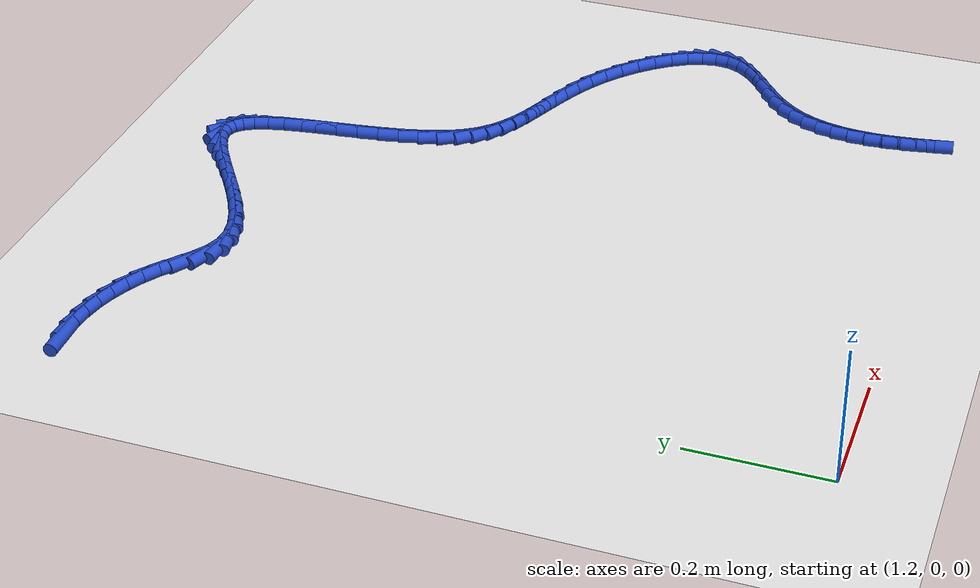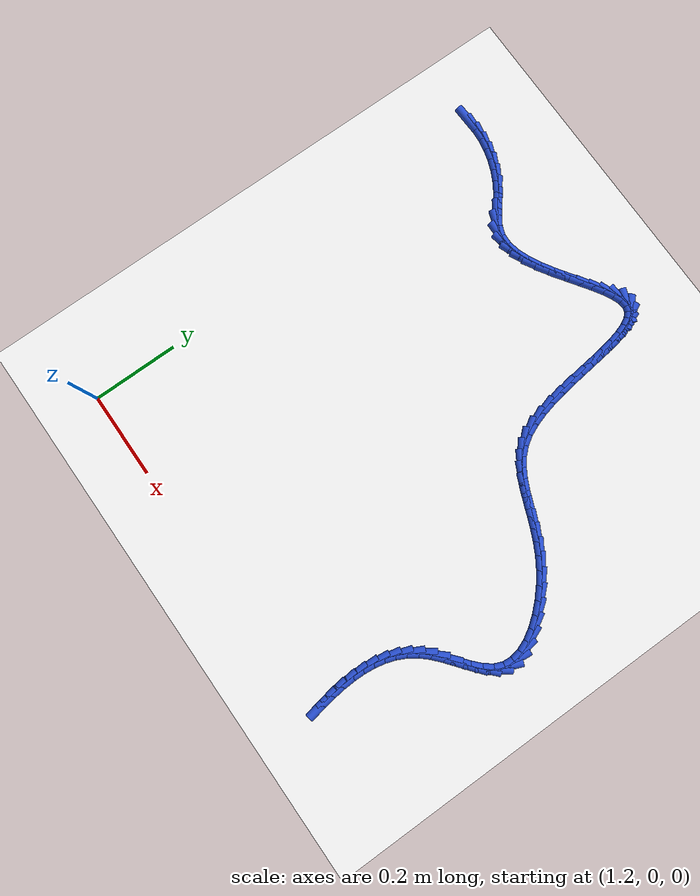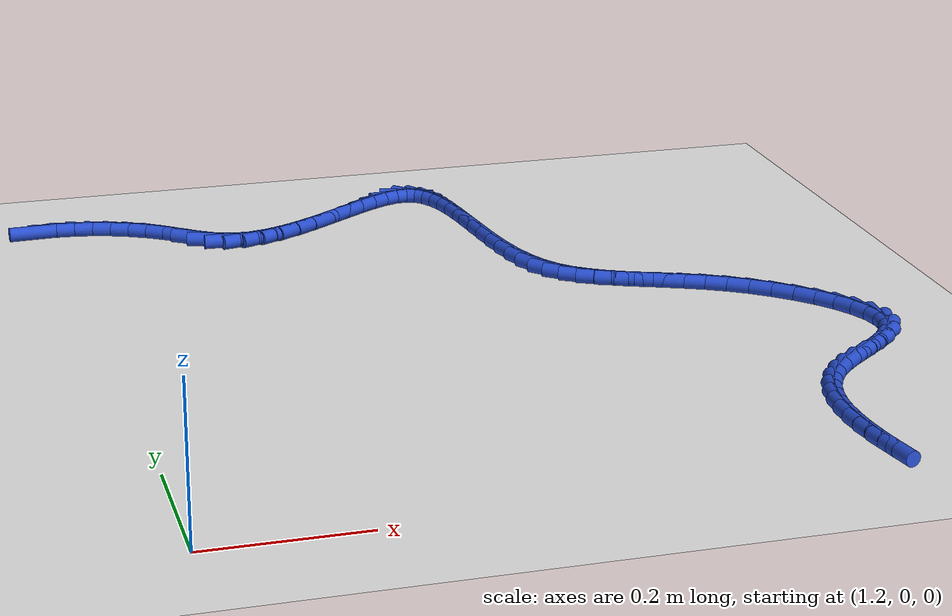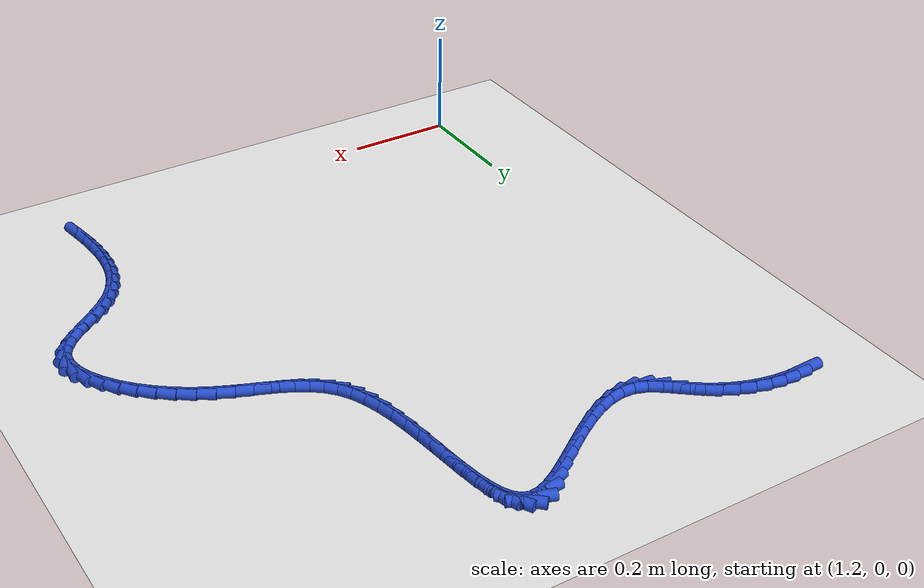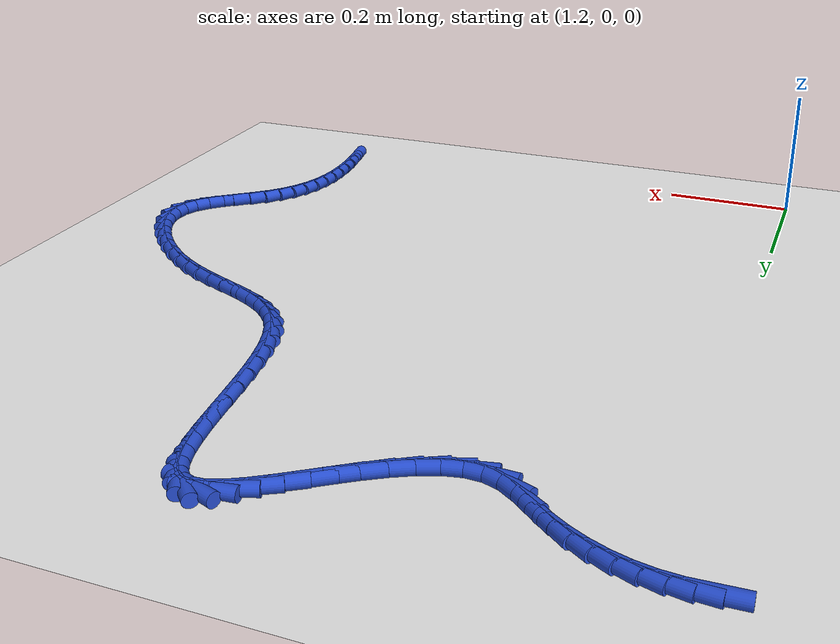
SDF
<sdf version="1.6">
 <world name="default">
  <model name="ground_plane">
   <static>1</static>
   <link name="link">
    <collision name="collision">
     <geometry><plane><normal>0 0 1</normal><size>100 100</size></plane></geometry>
     <surface><friction><ode><mu>100</mu><mu2>50</mu2></ode></friction></surface>
    </collision>
    <visual name="visual">
     <cast_shadows>0</cast_shadows>
     <geometry><plane><normal>0 0 1</normal><size>100 100</size></plane></geometry>
     <material>
      <script><uri>file://media/materials/scripts/gazebo.material</uri><name>Gazebo/WhiteGlow</name></script>
     </material>
    </visual>
   </link>
  </model>
  <model name="line">
   <link name="link_75">
    <pose>1.1526266735018658 1.0463145162870864 0.01 0 1.57 0.03861361944740141</pose>
    <collision name="collision">
     <geometry><cylinder><radius>0.01</radius><length>0.08</length></cylinder></geometry>
    </collision>
    <visual name="visual">
     <material>
      <script><name>Gazebo/Blue</name><uri>file://media/materials/scripts/gazebo.material</uri></script>
     </material>
     <geometry><cylinder><radius>0.01</radius><length>0.08</length></cylinder></geometry>
    </visual>
   </link>
   <link name="link_76">
    <pose>1.1792837865682195 1.047344355791699 0.01 0 1.57 -0.07263705225409967</pose>
    <collision name="collision">
     <geometry><cylinder><radius>0.01</radius><length>0.08</length></cylinder></geometry>
    </collision>
    <visual name="visual">
     <material>
      <script><name>Gazebo/Blue</name><uri>file://media/materials/scripts/gazebo.material</uri></script>
     </material>
     <geometry><cylinder><radius>0.01</radius><length>0.08</length></cylinder></geometry>
    </visual>
   </link>
   <link name="link_77">
    <pose>1.2057616995558191 1.0454176885938118 0.01 0 1.57 -0.17971318732019995</pose>
    <collision name="collision">
     <geometry><cylinder><radius>0.01</radius><length>0.08</length></cylinder></geometry>
    </collision>
    <visual name="visual">
     <material>
      <script><name>Gazebo/Blue</name><uri>file://media/materials/scripts/gazebo.material</uri></script>
     </material>
     <geometry><cylinder><radius>0.01</radius><length>0.08</length></cylinder></geometry>
    </visual>
   </link>
   <link name="link_78">
    <pose>1.2318934217846826 1.0406702540904618 0.01 0 1.57 -0.2823685182452931</pose>
    <collision name="collision">
     <geometry><cylinder><radius>0.01</radius><length>0.08</length></cylinder></geometry>
    </collision>
    <visual name="visual">
     <material>
      <script><name>Gazebo/Blue</name><uri>file://media/materials/scripts/gazebo.material</uri></script>
     </material>
     <geometry><cylinder><radius>0.01</radius><length>0.08</length></cylinder></geometry>
    </visual>
   </link>
   <link name="link_79">
    <pose>1.2575119625748288 1.0332377916786875 0.01 0 1.57 -0.3807277119849179</pose>
    <collision name="collision">
     <geometry><cylinder><radius>0.01</radius><length>0.08</length></cylinder></geometry>
    </collision>
    <visual name="visual">
     <material>
      <script><name>Gazebo/Blue</name><uri>file://media/materials/scripts/gazebo.material</uri></script>
     </material>
     <geometry><cylinder><radius>0.01</radius><length>0.08</length></cylinder></geometry>
    </visual>
   </link>
   <link name="link_80">
    <pose>1.2824503312462747 1.0232560407555256 0.01 0 1.57 -0.4751925008197552</pose>
    <collision name="collision">
     <geometry><cylinder><radius>0.01</radius><length>0.08</length></cylinder></geometry>
    </collision>
    <visual name="visual">
     <material>
      <script><name>Gazebo/Blue</name><uri>file://media/materials/scripts/gazebo.material</uri></script>
     </material>
     <geometry><cylinder><radius>0.01</radius><length>0.08</length></cylinder></geometry>
    </visual>
   </link>
   <link name="link_81">
    <pose>1.3065415371190388 1.010860740718014 0.01 0 1.57 -0.5663501517348631</pose>
    <collision name="collision">
     <geometry><cylinder><radius>0.01</radius><length>0.08</length></cylinder></geometry>
    </collision>
    <visual name="visual">
     <material>
      <script><name>Gazebo/Blue</name><uri>file://media/materials/scripts/gazebo.material</uri></script>
     </material>
     <geometry><cylinder><radius>0.01</radius><length>0.08</length></cylinder></geometry>
    </visual>
   </link>
   <link name="link_82">
    <pose>1.3296185895131394 0.9961876309631899 0.01 0 1.57 -0.6507239738071691</pose>
    <collision name="collision">
     <geometry><cylinder><radius>0.01</radius><length>0.08</length></cylinder></geometry>
    </collision>
    <visual name="visual">
     <material>
      <script><name>Gazebo/Blue</name><uri>file://media/materials/scripts/gazebo.material</uri></script>
     </material>
     <geometry><cylinder><radius>0.01</radius><length>0.08</length></cylinder></geometry>
    </visual>
   </link>
   <link name="link_83">
    <pose>1.351557193713651 0.9794847318175028 0.01 0 1.57 -0.6697816495396938</pose>
    <collision name="collision">
     <geometry><cylinder><radius>0.01</radius><length>0.08</length></cylinder></geometry>
    </collision>
    <visual name="visual">
     <material>
      <script><name>Gazebo/Blue</name><uri>file://media/materials/scripts/gazebo.material</uri></script>
     </material>
     <geometry><cylinder><radius>0.01</radius><length>0.08</length></cylinder></geometry>
    </visual>
   </link>
   <link name="link_84">
    <pose>1.3728501435175093 0.9626228696863709 0.01 0 1.57 -0.5726782461041459</pose>
    <collision name="collision">
     <geometry><cylinder><radius>0.01</radius><length>0.08</length></cylinder></geometry>
    </collision>
    <visual name="visual">
     <material>
      <script><name>Gazebo/Blue</name><uri>file://media/materials/scripts/gazebo.material</uri></script>
     </material>
     <geometry><cylinder><radius>0.01</radius><length>0.08</length></cylinder></geometry>
    </visual>
   </link>
   <link name="link_85">
    <pose>1.3944543751584002 0.9486934627596779 0.01 0 1.57 -0.33447496092929024</pose>
    <collision name="collision">
     <geometry><cylinder><radius>0.01</radius><length>0.08</length></cylinder></geometry>
    </collision>
    <visual name="visual">
     <material>
      <script><name>Gazebo/Blue</name><uri>file://media/materials/scripts/gazebo.material</uri></script>
     </material>
     <geometry><cylinder><radius>0.01</radius><length>0.08</length></cylinder></geometry>
    </visual>
   </link>
   <link name="link_86">
    <pose>1.4173161890875434 0.9407482381595356 0.01 0 1.57 -0.03491881624072259</pose>
    <collision name="collision">
     <geometry><cylinder><radius>0.01</radius><length>0.08</length></cylinder></geometry>
    </collision>
    <visual name="visual">
     <material>
      <script><name>Gazebo/Blue</name><uri>file://media/materials/scripts/gazebo.material</uri></script>
     </material>
     <geometry><cylinder><radius>0.01</radius><length>0.08</length></cylinder></geometry>
    </visual>
   </link>
   <link name="link_87">
    <pose>1.4417671094479425 0.9398940937768268 0.01 0 1.57 0.19913435011032157</pose>
    <collision name="collision">
     <geometry><cylinder><radius>0.01</radius><length>0.08</length></cylinder></geometry>
    </collision>
    <visual name="visual">
     <material>
      <script><name>Gazebo/Blue</name><uri>file://media/materials/scripts/gazebo.material</uri></script>
     </material>
     <geometry><cylinder><radius>0.01</radius><length>0.08</length></cylinder></geometry>
    </visual>
   </link>
   <link name="link_88">
    <pose>1.4674559978607722 0.9450783419592488 0.01 0 1.57 0.36222895783578396</pose>
    <collision name="collision">
     <geometry><cylinder><radius>0.01</radius><length>0.08</length></cylinder></geometry>
    </collision>
    <visual name="visual">
     <material>
      <script><name>Gazebo/Blue</name><uri>file://media/materials/scripts/gazebo.material</uri></script>
     </material>
     <geometry><cylinder><radius>0.01</radius><length>0.08</length></cylinder></geometry>
    </visual>
   </link>
   <link name="link_89">
    <pose>1.4939961294652695 0.9551357181230407 0.01 0 1.57 0.47140595957797343</pose>
    <collision name="collision">
     <geometry><cylinder><radius>0.01</radius><length>0.08</length></cylinder></geometry>
    </collision>
    <visual name="visual">
     <material>
      <script><name>Gazebo/Blue</name><uri>file://media/materials/scripts/gazebo.material</uri></script>
     </material>
     <geometry><cylinder><radius>0.01</radius><length>0.08</length></cylinder></geometry>
    </visual>
   </link>
   <link name="link_90">
    <pose>1.5210007794006692 0.968900957684441 0.01 0 1.57 0.542002814652058</pose>
    <collision name="collision">
     <geometry><cylinder><radius>0.01</radius><length>0.08</length></cylinder></geometry>
    </collision>
    <visual name="visual">
     <material>
      <script><name>Gazebo/Blue</name><uri>file://media/materials/scripts/gazebo.material</uri></script>
     </material>
     <geometry><cylinder><radius>0.01</radius><length>0.08</length></cylinder></geometry>
    </visual>
   </link>
   <link name="link_91">
    <pose>1.5480832228062076 0.9852087960596891 0.01 0 1.57 0.5837541852503759</pose>
    <collision name="collision">
     <geometry><cylinder><radius>0.01</radius><length>0.08</length></cylinder></geometry>
    </collision>
    <visual name="visual">
     <material>
      <script><name>Gazebo/Blue</name><uri>file://media/materials/scripts/gazebo.material</uri></script>
     </material>
     <geometry><cylinder><radius>0.01</radius><length>0.08</length></cylinder></geometry>
    </visual>
   </link>
   <link name="link_92">
    <pose>1.5748567348211209 1.002893968665024 0.01 0 1.57 0.6014722919995131</pose>
    <collision name="collision">
     <geometry><cylinder><radius>0.01</radius><length>0.08</length></cylinder></geometry>
    </collision>
    <visual name="visual">
     <material>
      <script><name>Gazebo/Blue</name><uri>file://media/materials/scripts/gazebo.material</uri></script>
     </material>
     <geometry><cylinder><radius>0.01</radius><length>0.08</length></cylinder></geometry>
    </visual>
   </link>
   <link name="link_93">
    <pose>1.6009345905846453 1.020791210916685 0.01 0 1.57 0.5957287079945708</pose>
    <collision name="collision">
     <geometry><cylinder><radius>0.01</radius><length>0.08</length></cylinder></geometry>
    </collision>
    <visual name="visual">
     <material>
      <script><name>Gazebo/Blue</name><uri>file://media/materials/scripts/gazebo.material</uri></script>
     </material>
     <geometry><cylinder><radius>0.01</radius><length>0.08</length></cylinder></geometry>
    </visual>
   </link>
   <link name="link_94">
    <pose>1.625930065236017 1.0377352582309116 0.01 0 1.57 0.5623077037502237</pose>
    <collision name="collision">
     <geometry><cylinder><radius>0.01</radius><length>0.08</length></cylinder></geometry>
    </collision>
    <visual name="visual">
     <material>
      <script><name>Gazebo/Blue</name><uri>file://media/materials/scripts/gazebo.material</uri></script>
     </material>
     <geometry><cylinder><radius>0.01</radius><length>0.08</length></cylinder></geometry>
    </visual>
   </link>
   <link name="link_95">
    <pose>1.6494564339144717 1.052560846023942 0.01 0 1.57 0.4893910795156581</pose>
    <collision name="collision">
     <geometry><cylinder><radius>0.01</radius><length>0.08</length></cylinder></geometry>
    </collision>
    <visual name="visual">
     <material>
      <script><name>Gazebo/Blue</name><uri>file://media/materials/scripts/gazebo.material</uri></script>
     </material>
     <geometry><cylinder><radius>0.01</radius><length>0.08</length></cylinder></geometry>
    </visual>
   </link>
   <link name="link_96">
    <pose>1.6711269717592454 1.064102709712016 0.01 0 1.57 0.35005032080756443</pose>
    <collision name="collision">
     <geometry><cylinder><radius>0.01</radius><length>0.08</length></cylinder></geometry>
    </collision>
    <visual name="visual">
     <material>
      <script><name>Gazebo/Blue</name><uri>file://media/materials/scripts/gazebo.material</uri></script>
     </material>
     <geometry><cylinder><radius>0.01</radius><length>0.08</length></cylinder></geometry>
    </visual>
   </link>
   <link name="link_97">
    <pose>1.690554953909575 1.0711955847113728 0.01 0 1.57 0.08779373933963806</pose>
    <collision name="collision">
     <geometry><cylinder><radius>0.01</radius><length>0.08</length></cylinder></geometry>
    </collision>
    <visual name="visual">
     <material>
      <script><name>Gazebo/Blue</name><uri>file://media/materials/scripts/gazebo.material</uri></script>
     </material>
     <geometry><cylinder><radius>0.01</radius><length>0.08</length></cylinder></geometry>
    </visual>
   </link>
   <link name="link_98">
    <pose>1.7073536555046944 1.0726742064382502 0.01 0 1.57 -0.347801669999959</pose>
    <collision name="collision">
     <geometry><cylinder><radius>0.01</radius><length>0.08</length></cylinder></geometry>
    </collision>
    <visual name="visual">
     <material>
      <script><name>Gazebo/Blue</name><uri>file://media/materials/scripts/gazebo.material</uri></script>
     </material>
     <geometry><cylinder><radius>0.01</radius><length>0.08</length></cylinder></geometry>
    </visual>
   </link>
   <link name="link_99">
    <pose>1.72124570049186 1.0676377950053537 0.01 0 1.57 -0.7826201270475508</pose>
    <collision name="collision">
     <geometry><cylinder><radius>0.01</radius><length>0.08</length></cylinder></geometry>
    </collision>
    <visual name="visual">
     <material>
      <script><name>Gazebo/Blue</name><uri>file://media/materials/scripts/gazebo.material</uri></script>
     </material>
     <geometry><cylinder><radius>0.01</radius><length>0.08</length></cylinder></geometry>
    </visual>
   </link>
   <link name="link_100">
    <pose>1.7324821173272873 1.0564636357251551 0.01 0 1.57 -1.073107047162691</pose>
    <collision name="collision">
     <geometry><cylinder><radius>0.01</radius><length>0.08</length></cylinder></geometry>
    </collision>
    <visual name="visual">
     <material>
      <script><name>Gazebo/Blue</name><uri>file://media/materials/scripts/gazebo.material</uri></script>
     </material>
     <geometry><cylinder><radius>0.01</radius><length>0.08</length></cylinder></geometry>
    </visual>
   </link>
   <link name="link_101">
    <pose>1.7414733320482754 1.0399145528255798 0.01 0 1.57 -1.2446812266334843</pose>
    <collision name="collision">
     <geometry><cylinder><radius>0.01</radius><length>0.08</length></cylinder></geometry>
    </collision>
    <visual name="visual">
     <material>
      <script><name>Gazebo/Blue</name><uri>file://media/materials/scripts/gazebo.material</uri></script>
     </material>
     <geometry><cylinder><radius>0.01</radius><length>0.08</length></cylinder></geometry>
    </visual>
   </link>
   <link name="link_102">
    <pose>1.7486298037009003 1.0187534503737106 0.01 0 1.57 -1.345493740062619</pose>
    <collision name="collision">
     <geometry><cylinder><radius>0.01</radius><length>0.08</length></cylinder></geometry>
    </collision>
    <visual name="visual">
     <material>
      <script><name>Gazebo/Blue</name><uri>file://media/materials/scripts/gazebo.material</uri></script>
     </material>
     <geometry><cylinder><radius>0.01</radius><length>0.08</length></cylinder></geometry>
    </visual>
   </link>
   <link name="link_103">
    <pose>1.7543619913312383 0.9937432324366319 0.01 0 1.57 -1.4044142377420004</pose>
    <collision name="collision">
     <geometry><cylinder><radius>0.01</radius><length>0.08</length></cylinder></geometry>
    </collision>
    <visual name="visual">
     <material>
      <script><name>Gazebo/Blue</name><uri>file://media/materials/scripts/gazebo.material</uri></script>
     </material>
     <geometry><cylinder><radius>0.01</radius><length>0.08</length></cylinder></geometry>
    </visual>
   </link>
   <link name="link_104">
    <pose>1.7590803539853666 0.9656468030814277 0.01 0 1.57 -1.436338601322821</pose>
    <collision name="collision">
     <geometry><cylinder><radius>0.01</radius><length>0.08</length></cylinder></geometry>
    </collision>
    <visual name="visual">
     <material>
      <script><name>Gazebo/Blue</name><uri>file://media/materials/scripts/gazebo.material</uri></script>
     </material>
     <geometry><cylinder><radius>0.01</radius><length>0.08</length></cylinder></geometry>
    </visual>
   </link>
   <link name="link_105">
    <pose>1.7631953507093614 0.9352270663751818 0.01 0 1.57 -1.4487642947102197</pose>
    <collision name="collision">
     <geometry><cylinder><radius>0.01</radius><length>0.08</length></cylinder></geometry>
    </collision>
    <visual name="visual">
     <material>
      <script><name>Gazebo/Blue</name><uri>file://media/materials/scripts/gazebo.material</uri></script>
     </material>
     <geometry><cylinder><radius>0.01</radius><length>0.08</length></cylinder></geometry>
    </visual>
   </link>
   <link name="link_106">
    <pose>1.7671174405493002 0.9032469263849795 0.01 0 1.57 -1.4451667577564475</pose>
    <collision name="collision">
     <geometry><cylinder><radius>0.01</radius><length>0.08</length></cylinder></geometry>
    </collision>
    <visual name="visual">
     <material>
      <script><name>Gazebo/Blue</name><uri>file://media/materials/scripts/gazebo.material</uri></script>
     </material>
     <geometry><cylinder><radius>0.01</radius><length>0.08</length></cylinder></geometry>
    </visual>
   </link>
   <link name="link_107">
    <pose>1.7712570825512586 0.8704692871779036 0.01 0 1.57 -1.4265050339522864</pose>
    <collision name="collision">
     <geometry><cylinder><radius>0.01</radius><length>0.08</length></cylinder></geometry>
    </collision>
    <visual name="visual">
     <material>
      <script><name>Gazebo/Blue</name><uri>file://media/materials/scripts/gazebo.material</uri></script>
     </material>
     <geometry><cylinder><radius>0.01</radius><length>0.08</length></cylinder></geometry>
    </visual>
   </link>
   <link name="link_108">
    <pose>1.7760247357613144 0.8376570528210396 0.01 0 1.57 -1.3917671438794603</pose>
    <collision name="collision">
     <geometry><cylinder><radius>0.01</radius><length>0.08</length></cylinder></geometry>
    </collision>
    <visual name="visual">
     <material>
      <script><name>Gazebo/Blue</name><uri>file://media/materials/scripts/gazebo.material</uri></script>
     </material>
     <geometry><cylinder><radius>0.01</radius><length>0.08</length></cylinder></geometry>
    </visual>
   </link>
   <link name="link_109">
    <pose>1.7818308592255432 0.8055731273814699 0.01 0 1.57 -1.3379481424900808</pose>
    <collision name="collision">
     <geometry><cylinder><radius>0.01</radius><length>0.08</length></cylinder></geometry>
    </collision>
    <visual name="visual">
     <material>
      <script><name>Gazebo/Blue</name><uri>file://media/materials/scripts/gazebo.material</uri></script>
     </material>
     <geometry><cylinder><radius>0.01</radius><length>0.08</length></cylinder></geometry>
    </visual>
   </link>
   <link name="link_110">
    <pose>1.7890859119900229 0.7749804149262794 0.01 0 1.57 -1.259618730873318</pose>
    <collision name="collision">
     <geometry><cylinder><radius>0.01</radius><length>0.08</length></cylinder></geometry>
    </collision>
    <visual name="visual">
     <material>
      <script><name>Gazebo/Blue</name><uri>file://media/materials/scripts/gazebo.material</uri></script>
     </material>
     <geometry><cylinder><radius>0.01</radius><length>0.08</length></cylinder></geometry>
    </visual>
   </link>
   <link name="link_111">
    <pose>1.7982003531008288 0.7466418195225523 0.01 0 1.57 -1.1482846602919883</pose>
    <collision name="collision">
     <geometry><cylinder><radius>0.01</radius><length>0.08</length></cylinder></geometry>
    </collision>
    <visual name="visual">
     <material>
      <script><name>Gazebo/Blue</name><uri>file://media/materials/scripts/gazebo.material</uri></script>
     </material>
     <geometry><cylinder><radius>0.01</radius><length>0.08</length></cylinder></geometry>
    </visual>
   </link>
   <link name="link_112">
    <pose>1.809584641604039 0.7213202452373725 0.01 0 1.57 -0.9939684801282754</pose>
    <collision name="collision">
     <geometry><cylinder><radius>0.01</radius><length>0.08</length></cylinder></geometry>
    </collision>
    <visual name="visual">
     <material>
      <script><name>Gazebo/Blue</name><uri>file://media/materials/scripts/gazebo.material</uri></script>
     </material>
     <geometry><cylinder><radius>0.01</radius><length>0.08</length></cylinder></geometry>
    </visual>
   </link>
   <link name="link_113">
    <pose>1.8236281517915163 0.6997362313900464 0.01 0 1.57 -0.8193009348713999</pose>
    <collision name="collision">
     <geometry><cylinder><radius>0.01</radius><length>0.08</length></cylinder></geometry>
    </collision>
    <visual name="visual">
     <material>
      <script><name>Gazebo/Blue</name><uri>file://media/materials/scripts/gazebo.material</uri></script>
     </material>
     <geometry><cylinder><radius>0.01</radius><length>0.08</length></cylinder></geometry>
    </visual>
   </link>
   <link name="link_114">
    <pose>1.8403415315238385 0.6818493575288457 0.01 0 1.57 -0.6629791058593726</pose>
    <collision name="collision">
     <geometry><cylinder><radius>0.01</radius><length>0.08</length></cylinder></geometry>
    </collision>
    <visual name="visual">
     <material>
      <script><name>Gazebo/Blue</name><uri>file://media/materials/scripts/gazebo.material</uri></script>
     </material>
     <geometry><cylinder><radius>0.01</radius><length>0.08</length></cylinder></geometry>
    </visual>
   </link>
   <link name="link_115">
    <pose>1.8594077269012794 0.6669607652481795 0.01 0 1.57 -0.5388914011927408</pose>
    <collision name="collision">
     <geometry><cylinder><radius>0.01</radius><length>0.08</length></cylinder></geometry>
    </collision>
    <visual name="visual">
     <material>
      <script><name>Gazebo/Blue</name><uri>file://media/materials/scripts/gazebo.material</uri></script>
     </material>
     <geometry><cylinder><radius>0.01</radius><length>0.08</length></cylinder></geometry>
    </visual>
   </link>
   <link name="link_116">
    <pose>1.8804988712417674 0.6543498704542132 0.01 0 1.57 -0.45162874578106893</pose>
    <collision name="collision">
     <geometry><cylinder><radius>0.01</radius><length>0.08</length></cylinder></geometry>
    </collision>
    <visual name="visual">
     <material>
      <script><name>Gazebo/Blue</name><uri>file://media/materials/scripts/gazebo.material</uri></script>
     </material>
     <geometry><cylinder><radius>0.01</radius><length>0.08</length></cylinder></geometry>
    </visual>
   </link>
   <link name="link_117">
    <pose>1.9032870978632328 0.6432960890531125 0.01 0 1.57 -0.40012814973879757</pose>
    <collision name="collision">
     <geometry><cylinder><radius>0.01</radius><length>0.08</length></cylinder></geometry>
    </collision>
    <visual name="visual">
     <material>
      <script><name>Gazebo/Blue</name><uri>file://media/materials/scripts/gazebo.material</uri></script>
     </material>
     <geometry><cylinder><radius>0.01</radius><length>0.08</length></cylinder></geometry>
    </visual>
   </link>
   <link name="link_118">
    <pose>1.927444540083606 0.6330788369510423 0.01 0 1.57 -0.3812516216154628</pose>
    <collision name="collision">
     <geometry><cylinder><radius>0.01</radius><length>0.08</length></cylinder></geometry>
    </collision>
    <visual name="visual">
     <material>
      <script><name>Gazebo/Blue</name><uri>file://media/materials/scripts/gazebo.material</uri></script>
     </material>
     <geometry><cylinder><radius>0.01</radius><length>0.08</length></cylinder></geometry>
    </visual>
   </link>
   <link name="link_119">
    <pose>1.9526433312208171 0.6229775300541684 0.01 0 1.57 -0.39180049434890785</pose>
    <collision name="collision">
     <geometry><cylinder><radius>0.01</radius><length>0.08</length></cylinder></geometry>
    </collision>
    <visual name="visual">
     <material>
      <script><name>Gazebo/Blue</name><uri>file://media/materials/scripts/gazebo.material</uri></script>
     </material>
     <geometry><cylinder><radius>0.01</radius><length>0.08</length></cylinder></geometry>
    </visual>
   </link>
   <link name="link_120">
    <pose>1.9785556045927946 0.612271584268656 0.01 0 1.57 -0.42906976689848386</pose>
    <collision name="collision">
     <geometry><cylinder><radius>0.01</radius><length>0.08</length></cylinder></geometry>
    </collision>
    <visual name="visual">
     <material>
      <script><name>Gazebo/Blue</name><uri>file://media/materials/scripts/gazebo.material</uri></script>
     </material>
     <geometry><cylinder><radius>0.01</radius><length>0.08</length></cylinder></geometry>
    </visual>
   </link>
   <link name="link_121">
    <pose>2.0048534935174693 0.6002404155006706 0.01 0 1.57 -0.4905667071690542</pose>
    <collision name="collision">
     <geometry><cylinder><radius>0.01</radius><length>0.08</length></cylinder></geometry>
    </collision>
    <visual name="visual">
     <material>
      <script><name>Gazebo/Blue</name><uri>file://media/materials/scripts/gazebo.material</uri></script>
     </material>
     <geometry><cylinder><radius>0.01</radius><length>0.08</length></cylinder></geometry>
    </visual>
   </link>
   <link name="link_122">
    <pose>2.031209131312772 0.586163439656378 0.01 0 1.57 -0.5713966546503334</pose>
    <collision name="collision">
     <geometry><cylinder><radius>0.01</radius><length>0.08</length></cylinder></geometry>
    </collision>
    <visual name="visual">
     <material>
      <script><name>Gazebo/Blue</name><uri>file://media/materials/scripts/gazebo.material</uri></script>
     </material>
     <geometry><cylinder><radius>0.01</radius><length>0.08</length></cylinder></geometry>
    </visual>
   </link>
   <link name="link_123">
    <pose>2.0572643024323654 0.569411507724339 0.01 0 1.57 -0.654380128343384</pose>
    <collision name="collision">
     <geometry><cylinder><radius>0.01</radius><length>0.08</length></cylinder></geometry>
    </collision>
    <visual name="visual">
     <material>
      <script><name>Gazebo/Blue</name><uri>file://media/materials/scripts/gazebo.material</uri></script>
     </material>
     <geometry><cylinder><radius>0.01</radius><length>0.08</length></cylinder></geometry>
    </visual>
   </link>
   <link name="link_124">
    <pose>2.082405454442156 0.5501247498716295 0.01 0 1.57 -0.736546551737358</pose>
    <collision name="collision">
     <geometry><cylinder><radius>0.01</radius><length>0.08</length></cylinder></geometry>
    </collision>
    <visual name="visual">
     <material>
      <script><name>Gazebo/Blue</name><uri>file://media/materials/scripts/gazebo.material</uri></script>
     </material>
     <geometry><cylinder><radius>0.01</radius><length>0.08</length></cylinder></geometry>
    </visual>
   </link>
   <link name="link_125">
    <pose>2.105891206976329 0.5288284163596786 0.01 0 1.57 -0.8239004540931912</pose>
    <collision name="collision">
     <geometry><cylinder><radius>0.01</radius><length>0.08</length></cylinder></geometry>
    </collision>
    <visual name="visual">
     <material>
      <script><name>Gazebo/Blue</name><uri>file://media/materials/scripts/gazebo.material</uri></script>
     </material>
     <geometry><cylinder><radius>0.01</radius><length>0.08</length></cylinder></geometry>
    </visual>
   </link>
   <link name="link_126">
    <pose>2.126979227271276 0.5060506268347447 0.01 0 1.57 -0.9232725869289555</pose>
    <collision name="collision">
     <geometry><cylinder><radius>0.01</radius><length>0.08</length></cylinder></geometry>
    </collision>
    <visual name="visual">
     <material>
      <script><name>Gazebo/Blue</name><uri>file://media/materials/scripts/gazebo.material</uri></script>
     </material>
     <geometry><cylinder><radius>0.01</radius><length>0.08</length></cylinder></geometry>
    </visual>
   </link>
   <link name="link_127">
    <pose>2.1449271825633875 0.48231950094308584 0.01 0 1.57 -1.0435142558296233</pose>
    <collision name="collision">
     <geometry><cylinder><radius>0.01</radius><length>0.08</length></cylinder></geometry>
    </collision>
    <visual name="visual">
     <material>
      <script><name>Gazebo/Blue</name><uri>file://media/materials/scripts/gazebo.material</uri></script>
     </material>
     <geometry><cylinder><radius>0.01</radius><length>0.08</length></cylinder></geometry>
    </visual>
   </link>
   <link name="link_128">
    <pose>2.1589927400890554 0.45816315833096044 0.01 0 1.57 -1.1967774751915812</pose>
    <collision name="collision">
     <geometry><cylinder><radius>0.01</radius><length>0.08</length></cylinder></geometry>
    </collision>
    <visual name="visual">
     <material>
      <script><name>Gazebo/Blue</name><uri>file://media/materials/scripts/gazebo.material</uri></script>
     </material>
     <geometry><cylinder><radius>0.01</radius><length>0.08</length></cylinder></geometry>
    </visual>
   </link>
   <link name="link_129">
    <pose>2.1684335670846724 0.43410971864462683 0.01 0 1.57 -1.3985930860457945</pose>
    <collision name="collision">
     <geometry><cylinder><radius>0.01</radius><length>0.08</length></cylinder></geometry>
    </collision>
    <visual name="visual">
     <material>
      <script><name>Gazebo/Blue</name><uri>file://media/materials/scripts/gazebo.material</uri></script>
     </material>
     <geometry><cylinder><radius>0.01</radius><length>0.08</length></cylinder></geometry>
    </visual>
   </link>
   <link name="link_130">
    <pose>2.172507330786628 0.4106873015303432 0.01 0 1.57 1.4796153196907902</pose>
    <collision name="collision">
     <geometry><cylinder><radius>0.01</radius><length>0.08</length></cylinder></geometry>
    </collision>
    <visual name="visual">
     <material>
      <script><name>Gazebo/Blue</name><uri>file://media/materials/scripts/gazebo.material</uri></script>
     </material>
     <geometry><cylinder><radius>0.01</radius><length>0.08</length></cylinder></geometry>
    </visual>
   </link>
   <link name="link_131">
    <pose>2.1704716984313146 0.38842402663436765 0.01 0 1.57 1.1665525168934083</pose>
    <collision name="collision">
     <geometry><cylinder><radius>0.01</radius><length>0.08</length></cylinder></geometry>
    </collision>
    <visual name="visual">
     <material>
      <script><name>Gazebo/Blue</name><uri>file://media/materials/scripts/gazebo.material</uri></script>
     </material>
     <geometry><cylinder><radius>0.01</radius><length>0.08</length></cylinder></geometry>
    </visual>
   </link>
   <link name="link_132">
    <pose>2.16165635592261 0.36781802683893955 0.01 0 1.57 0.9050150576783235</pose>
    <collision name="collision">
     <geometry><cylinder><radius>0.01</radius><length>0.08</length></cylinder></geometry>
    </collision>
    <visual name="visual">
     <material>
      <script><name>Gazebo/Blue</name><uri>file://media/materials/scripts/gazebo.material</uri></script>
     </material>
     <geometry><cylinder><radius>0.01</radius><length>0.08</length></cylinder></geometry>
    </visual>
   </link>
   <link name="link_133">
    <pose>2.1467278753228323 0.34881078921275255 0.01 0 1.57 0.7521343753233432</pose>
    <collision name="collision">
     <geometry><cylinder><radius>0.01</radius><length>0.08</length></cylinder></geometry>
    </collision>
    <visual name="visual">
     <material>
      <script><name>Gazebo/Blue</name><uri>file://media/materials/scripts/gazebo.material</uri></script>
     </material>
     <geometry><cylinder><radius>0.01</radius><length>0.08</length></cylinder></geometry>
    </visual>
   </link>
   <link name="link_134">
    <pose>2.127533128243024 0.33085235374175564 0.01 0 1.57 0.68086106914439</pose>
    <collision name="collision">
     <geometry><cylinder><radius>0.01</radius><length>0.08</length></cylinder></geometry>
    </collision>
    <visual name="visual">
     <material>
      <script><name>Gazebo/Blue</name><uri>file://media/materials/scripts/gazebo.material</uri></script>
     </material>
     <geometry><cylinder><radius>0.01</radius><length>0.08</length></cylinder></geometry>
    </visual>
   </link>
   <link name="link_135">
    <pose>2.105959535206952 0.31337587686323587 0.01 0 1.57 0.6722307670911678</pose>
    <collision name="collision">
     <geometry><cylinder><radius>0.01</radius><length>0.08</length></cylinder></geometry>
    </collision>
    <visual name="visual">
     <material>
      <script><name>Gazebo/Blue</name><uri>file://media/materials/scripts/gazebo.material</uri></script>
     </material>
     <geometry><cylinder><radius>0.01</radius><length>0.08</length></cylinder></geometry>
    </visual>
   </link>
   <link name="link_136">
    <pose>2.0838945167383827 0.2958145150144795 0.01 0 1.57 0.7223183958250556</pose>
    <collision name="collision">
     <geometry><cylinder><radius>0.01</radius><length>0.08</length></cylinder></geometry>
    </collision>
    <visual name="visual">
     <material>
      <script><name>Gazebo/Blue</name><uri>file://media/materials/scripts/gazebo.material</uri></script>
     </material>
     <geometry><cylinder><radius>0.01</radius><length>0.08</length></cylinder></geometry>
    </visual>
   </link>
   <link name="link_137">
    <pose>2.063225493361085 0.27760142463277354 0.01 0 1.57 0.835390576359548</pose>
    <collision name="collision">
     <geometry><cylinder><radius>0.01</radius><length>0.08</length></cylinder></geometry>
    </collision>
    <visual name="visual">
     <material>
      <script><name>Gazebo/Blue</name><uri>file://media/materials/scripts/gazebo.material</uri></script>
     </material>
     <geometry><cylinder><radius>0.01</radius><length>0.08</length></cylinder></geometry>
    </visual>
   </link>
   <link name="link_138">
    <pose>2.0456876975039777 0.2582162195688358 0.01 0 1.57 0.9754748308125526</pose>
    <collision name="collision">
     <geometry><cylinder><radius>0.01</radius><length>0.08</length></cylinder></geometry>
    </collision>
    <visual name="visual">
     <material>
      <script><name>Gazebo/Blue</name><uri>file://media/materials/scripts/gazebo.material</uri></script>
     </material>
     <geometry><cylinder><radius>0.01</radius><length>0.08</length></cylinder></geometry>
    </visual>
   </link>
   <link name="link_139">
    <pose>2.0316868483463097 0.23754436504280071 0.01 0 1.57 1.1140103816874054</pose>
    <collision name="collision">
     <geometry><cylinder><radius>0.01</radius><length>0.08</length></cylinder></geometry>
    </collision>
    <visual name="visual">
     <material>
      <script><name>Gazebo/Blue</name><uri>file://media/materials/scripts/gazebo.material</uri></script>
     </material>
     <geometry><cylinder><radius>0.01</radius><length>0.08</length></cylinder></geometry>
    </visual>
   </link>
   <link name="link_140">
    <pose>2.020942018979776 0.21568093400530686 0.01 0 1.57 1.2442416570648773</pose>
    <collision name="collision">
     <geometry><cylinder><radius>0.01</radius><length>0.08</length></cylinder></geometry>
    </collision>
    <visual name="visual">
     <material>
      <script><name>Gazebo/Blue</name><uri>file://media/materials/scripts/gazebo.material</uri></script>
     </material>
     <geometry><cylinder><radius>0.01</radius><length>0.08</length></cylinder></geometry>
    </visual>
   </link>
   <link name="link_141">
    <pose>2.013166545121388 0.1927227508159162 0.01 0 1.57 1.3613267009937604</pose>
    <collision name="collision">
     <geometry><cylinder><radius>0.01</radius><length>0.08</length></cylinder></geometry>
    </collision>
    <visual name="visual">
     <material>
      <script><name>Gazebo/Blue</name><uri>file://media/materials/scripts/gazebo.material</uri></script>
     </material>
     <geometry><cylinder><radius>0.01</radius><length>0.08</length></cylinder></geometry>
    </visual>
   </link>
   <link name="link_142">
    <pose>2.008073762488159 0.16876663983419235 0.01 0 1.57 1.462729130436281</pose>
    <collision name="collision">
     <geometry><cylinder><radius>0.01</radius><length>0.08</length></cylinder></geometry>
    </collision>
    <visual name="visual">
     <material>
      <script><name>Gazebo/Blue</name><uri>file://media/materials/scripts/gazebo.material</uri></script>
     </material>
     <geometry><cylinder><radius>0.01</radius><length>0.08</length></cylinder></geometry>
    </visual>
   </link>
   <link name="link_143">
    <pose>2.0053770067971013 0.14390942541969823 0.01 0 1.57 1.547910266975932</pose>
    <collision name="collision">
     <geometry><cylinder><radius>0.01</radius><length>0.08</length></cylinder></geometry>
    </collision>
    <visual name="visual">
     <material>
      <script><name>Gazebo/Blue</name><uri>file://media/materials/scripts/gazebo.material</uri></script>
     </material>
     <geometry><cylinder><radius>0.01</radius><length>0.08</length></cylinder></geometry>
    </visual>
   </link>
   <link name="link_144">
    <pose>2.0047896137652277 0.11824793193199698 0.01 0 1.57 -1.523983581742198</pose>
    <collision name="collision">
     <geometry><cylinder><radius>0.01</radius><length>0.08</length></cylinder></geometry>
    </collision>
    <visual name="visual">
     <material>
      <script><name>Gazebo/Blue</name><uri>file://media/materials/scripts/gazebo.material</uri></script>
     </material>
     <geometry><cylinder><radius>0.01</radius><length>0.08</length></cylinder></geometry>
    </visual>
   </link>
   <link name="link_145">
    <pose>2.0060249191095503 0.09187898373065148 0.01 0 1.57 -1.4684354418967953</pose>
    <collision name="collision">
     <geometry><cylinder><radius>0.01</radius><length>0.08</length></cylinder></geometry>
    </collision>
    <visual name="visual">
     <material>
      <script><name>Gazebo/Blue</name><uri>file://media/materials/scripts/gazebo.material</uri></script>
     </material>
     <geometry><cylinder><radius>0.01</radius><length>0.08</length></cylinder></geometry>
    </visual>
   </link>
   <link name="link_146">
    <pose>2.0087962585470827 0.06489940517522495 0.01 0 1.57 -1.4255829226207366</pose>
    <collision name="collision">
     <geometry><cylinder><radius>0.01</radius><length>0.08</length></cylinder></geometry>
    </collision>
    <visual name="visual">
     <material>
      <script><name>Gazebo/Blue</name><uri>file://media/materials/scripts/gazebo.material</uri></script>
     </material>
     <geometry><cylinder><radius>0.01</radius><length>0.08</length></cylinder></geometry>
    </visual>
   </link>
   <link name="link_147">
    <pose>2.0128169677948358 0.0374060206252803 0.01 0 1.57 -1.394107581188027</pose>
    <collision name="collision">
     <geometry><cylinder><radius>0.01</radius><length>0.08</length></cylinder></geometry>
    </collision>
    <visual name="visual">
     <material>
      <script><name>Gazebo/Blue</name><uri>file://media/materials/scripts/gazebo.material</uri></script>
     </material>
     <geometry><cylinder><radius>0.01</radius><length>0.08</length></cylinder></geometry>
    </visual>
   </link>
  </model>
 </world>
</sdf>
